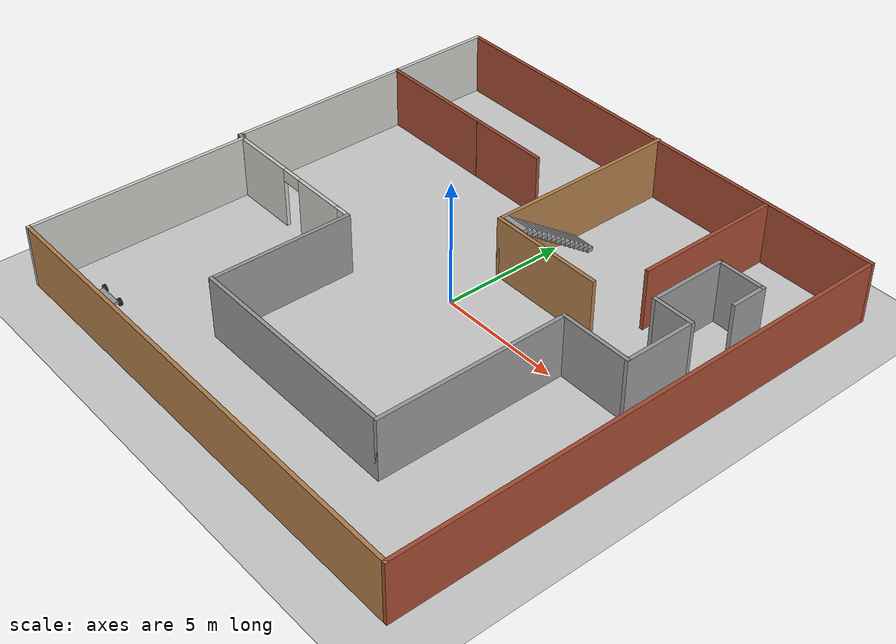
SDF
<sdf version="1.6">
 <world name="default">
  <light name="sun" type="directional">
   <pose>0 0 10 0 -0 0</pose>
   <diffuse>0.8 0.8 0.8 1</diffuse>
   <specular>0.1 0.1 0.1 1</specular>
   <attenuation>
    <range>1000</range>
    <constant>0.9</constant>
    <linear>0.01</linear>
    <quadratic>0.001</quadratic>
   </attenuation>
   <direction>-0.5 0.5 -1</direction>
  </light>
  <model name="ground_plane">
   <static>1</static>
   <link name="link">
    <collision name="collision">
     <geometry><plane><normal>0 0 1</normal><size>100 100</size></plane></geometry>
     <surface><friction><ode><mu>100</mu><mu2>50</mu2></ode></friction></surface>
    </collision>
    <visual name="visual">
     <cast_shadows>0</cast_shadows>
     <geometry><plane><normal>0 0 1</normal><size>100 100</size></plane></geometry>
     <material>
      <script><uri>file://media/materials/scripts/gazebo.material</uri><name>Gazebo/Grey</name></script>
     </material>
    </visual>
   </link>
  </model>
  <gravity>0 0 -9.8</gravity>
  <magnetic_field>6e-06 2.3e-05 -4.2e-05</magnetic_field>
  <atmosphere type="adiabatic"/>
  <physics name="default_physics" default="0" type="ode">
   <max_step_size>0.001</max_step_size>
   <real_time_factor>1</real_time_factor>
   <real_time_update_rate>1000</real_time_update_rate>
  </physics>
  <scene><ambient>0.4 0.4 0.4 1</ambient><background>0.7 0.7 0.7 1</background><shadows>1</shadows></scene>
  <spherical_coordinates>
   <surface_model>EARTH_WGS84</surface_model>
   <latitude_deg>0</latitude_deg>
   <longitude_deg>0</longitude_deg>
   <elevation>0</elevation>
   <heading_deg>0</heading_deg>
  </spherical_coordinates>
  <model name="myroom">
   <pose>-0.292081 -0.175469 0 0 -0 0</pose>
   <link name="Stairs_1">
    <visual name="Stairs_1_Visual_0">
     <pose>0.763284 5.95555 0.083333 0 -0 0</pose>
     <geometry><box><size>1 0.233333 0.166667</size></box></geometry>
     <material>
      <script><uri>file://media/materials/scripts/gazebo.material</uri><name>Gazebo/Grey</name></script>
      <ambient>1 1 1 1</ambient>
     </material>
    </visual>
    <collision name="Stairs_1_Collision_0">
     <geometry><box><size>1 0.233333 0.166667</size></box></geometry>
     <pose>0.763284 5.95555 0.083333 0 -0 0</pose>
    </collision>
    <visual name="Stairs_1_Visual_1">
     <pose>0.763284 5.72222 0.25 0 -0 0</pose>
     <geometry><box><size>1 0.233333 0.166667</size></box></geometry>
     <material>
      <script><uri>file://media/materials/scripts/gazebo.material</uri><name>Gazebo/Grey</name></script>
      <ambient>1 1 1 1</ambient>
     </material>
    </visual>
    <collision name="Stairs_1_Collision_1">
     <geometry><box><size>1 0.233333 0.166667</size></box></geometry>
     <pose>0.763284 5.72222 0.25 0 -0 0</pose>
    </collision>
    <visual name="Stairs_1_Visual_2">
     <pose>0.763284 5.48889 0.416667 0 -0 0</pose>
     <geometry><box><size>1 0.233333 0.166667</size></box></geometry>
     <material>
      <script><uri>file://media/materials/scripts/gazebo.material</uri><name>Gazebo/Grey</name></script>
      <ambient>1 1 1 1</ambient>
     </material>
    </visual>
    <collision name="Stairs_1_Collision_2">
     <geometry><box><size>1 0.233333 0.166667</size></box></geometry>
     <pose>0.763284 5.48889 0.416667 0 -0 0</pose>
    </collision>
    <visual name="Stairs_1_Visual_3">
     <pose>0.763284 5.25555 0.583333 0 -0 0</pose>
     <geometry><box><size>1 0.233333 0.166667</size></box></geometry>
     <material>
      <script><uri>file://media/materials/scripts/gazebo.material</uri><name>Gazebo/Grey</name></script>
      <ambient>1 1 1 1</ambient>
     </material>
    </visual>
    <collision name="Stairs_1_Collision_3">
     <geometry><box><size>1 0.233333 0.166667</size></box></geometry>
     <pose>0.763284 5.25555 0.583333 0 -0 0</pose>
    </collision>
    <visual name="Stairs_1_Visual_4">
     <pose>0.763284 5.02222 0.75 0 -0 0</pose>
     <geometry><box><size>1 0.233333 0.166667</size></box></geometry>
     <material>
      <script><uri>file://media/materials/scripts/gazebo.material</uri><name>Gazebo/Grey</name></script>
      <ambient>1 1 1 1</ambient>
     </material>
    </visual>
    <collision name="Stairs_1_Collision_4">
     <geometry><box><size>1 0.233333 0.166667</size></box></geometry>
     <pose>0.763284 5.02222 0.75 0 -0 0</pose>
    </collision>
    <visual name="Stairs_1_Visual_5">
     <pose>0.763284 4.78889 0.916667 0 -0 0</pose>
     <geometry><box><size>1 0.233333 0.166667</size></box></geometry>
     <material>
      <script><uri>file://media/materials/scripts/gazebo.material</uri><name>Gazebo/Grey</name></script>
      <ambient>1 1 1 1</ambient>
     </material>
    </visual>
    <collision name="Stairs_1_Collision_5">
     <geometry><box><size>1 0.233333 0.166667</size></box></geometry>
     <pose>0.763284 4.78889 0.916667 0 -0 0</pose>
    </collision>
    <visual name="Stairs_1_Visual_6">
     <pose>0.763284 4.55555 1.08333 0 -0 0</pose>
     <geometry><box><size>1 0.233333 0.166667</size></box></geometry>
     <material>
      <script><uri>file://media/materials/scripts/gazebo.material</uri><name>Gazebo/Grey</name></script>
      <ambient>1 1 1 1</ambient>
     </material>
    </visual>
    <collision name="Stairs_1_Collision_6">
     <geometry><box><size>1 0.233333 0.166667</size></box></geometry>
     <pose>0.763284 4.55555 1.08333 0 -0 0</pose>
    </collision>
    <visual name="Stairs_1_Visual_7">
     <pose>0.763284 4.32222 1.25 0 -0 0</pose>
     <geometry><box><size>1 0.233333 0.166667</size></box></geometry>
     <material>
      <script><uri>file://media/materials/scripts/gazebo.material</uri><name>Gazebo/Grey</name></script>
      <ambient>1 1 1 1</ambient>
     </material>
    </visual>
    <collision name="Stairs_1_Collision_7">
     <geometry><box><size>1 0.233333 0.166667</size></box></geometry>
     <pose>0.763284 4.32222 1.25 0 -0 0</pose>
    </collision>
    <visual name="Stairs_1_Visual_8">
     <pose>0.763284 4.08889 1.41667 0 -0 0</pose>
     <geometry><box><size>1 0.233333 0.166667</size></box></geometry>
     <material>
      <script><uri>file://media/materials/scripts/gazebo.material</uri><name>Gazebo/Grey</name></script>
      <ambient>1 1 1 1</ambient>
     </material>
    </visual>
    <collision name="Stairs_1_Collision_8">
     <geometry><box><size>1 0.233333 0.166667</size></box></geometry>
     <pose>0.763284 4.08889 1.41667 0 -0 0</pose>
    </collision>
    <visual name="Stairs_1_Visual_9">
     <pose>0.763284 3.85555 1.58333 0 -0 0</pose>
     <geometry><box><size>1 0.233333 0.166667</size></box></geometry>
     <material>
      <script><uri>file://media/materials/scripts/gazebo.material</uri><name>Gazebo/Grey</name></script>
      <ambient>1 1 1 1</ambient>
     </material>
    </visual>
    <collision name="Stairs_1_Collision_9">
     <geometry><box><size>1 0.233333 0.166667</size></box></geometry>
     <pose>0.763284 3.85555 1.58333 0 -0 0</pose>
    </collision>
    <visual name="Stairs_1_Visual_10">
     <pose>0.763284 3.62222 1.75 0 -0 0</pose>
     <geometry><box><size>1 0.233333 0.166667</size></box></geometry>
     <material>
      <script><uri>file://media/materials/scripts/gazebo.material</uri><name>Gazebo/Grey</name></script>
      <ambient>1 1 1 1</ambient>
     </material>
    </visual>
    <collision name="Stairs_1_Collision_10">
     <geometry><box><size>1 0.233333 0.166667</size></box></geometry>
     <pose>0.763284 3.62222 1.75 0 -0 0</pose>
    </collision>
    <visual name="Stairs_1_Visual_11">
     <pose>0.763284 3.38889 1.91667 0 -0 0</pose>
     <geometry><box><size>1 0.233333 0.166667</size></box></geometry>
     <material>
      <script><uri>file://media/materials/scripts/gazebo.material</uri><name>Gazebo/Grey</name></script>
      <ambient>1 1 1 1</ambient>
     </material>
    </visual>
    <collision name="Stairs_1_Collision_11">
     <geometry><box><size>1 0.233333 0.166667</size></box></geometry>
     <pose>0.763284 3.38889 1.91667 0 -0 0</pose>
    </collision>
    <visual name="Stairs_1_Visual_12">
     <pose>0.763284 3.15555 2.08333 0 -0 0</pose>
     <geometry><box><size>1 0.233333 0.166667</size></box></geometry>
     <material>
      <script><uri>file://media/materials/scripts/gazebo.material</uri><name>Gazebo/Grey</name></script>
      <ambient>1 1 1 1</ambient>
     </material>
    </visual>
    <collision name="Stairs_1_Collision_12">
     <geometry><box><size>1 0.233333 0.166667</size></box></geometry>
     <pose>0.763284 3.15555 2.08333 0 -0 0</pose>
    </collision>
    <visual name="Stairs_1_Visual_13">
     <pose>0.763284 2.92222 2.25 0 -0 0</pose>
     <geometry><box><size>1 0.233333 0.166667</size></box></geometry>
     <material>
      <script><uri>file://media/materials/scripts/gazebo.material</uri><name>Gazebo/Grey</name></script>
      <ambient>1 1 1 1</ambient>
     </material>
    </visual>
    <collision name="Stairs_1_Collision_13">
     <geometry><box><size>1 0.233333 0.166667</size></box></geometry>
     <pose>0.763284 2.92222 2.25 0 -0 0</pose>
    </collision>
    <visual name="Stairs_1_Visual_14">
     <pose>0.763284 2.68889 2.41667 0 -0 0</pose>
     <geometry><box><size>1 0.233333 0.166667</size></box></geometry>
     <material>
      <script><uri>file://media/materials/scripts/gazebo.material</uri><name>Gazebo/Grey</name></script>
      <ambient>1 1 1 1</ambient>
     </material>
    </visual>
    <collision name="Stairs_1_Collision_14">
     <geometry><box><size>1 0.233333 0.166667</size></box></geometry>
     <pose>0.763284 2.68889 2.41667 0 -0 0</pose>
    </collision>
   </link>
   <link name="Wall_0">
    <collision name="Wall_0_Collision">
     <geometry><box><size>0.75 0.15 2.5</size></box></geometry>
     <pose>0 0 1.25 0 -0 0</pose>
    </collision>
    <visual name="Wall_0_Visual">
     <pose>0 0 1.25 0 -0 0</pose>
     <geometry><box><size>0.75 0.15 2.5</size></box></geometry>
     <material>
      <script><uri>file://media/materials/scripts/gazebo.material</uri><name>Gazebo/CeilingTiled</name></script>
      <ambient>1 1 1 1</ambient>
     </material>
    </visual>
    <pose>-3.64337 -1.47351 0 0 -0 3.14159</pose>
   </link>
   <link name="Wall_1">
    <pose>-6.86838 -1.47351 0 0 -0 3.14159</pose>
    <visual name="Wall_1_Visual_0">
     <pose>-1.83718 0 1.25 0 -0 0</pose>
     <geometry><box><size>2.32564 0.15 2.5</size></box></geometry>
     <material>
      <script><uri>file://media/materials/scripts/gazebo.material</uri><name>Gazebo/CeilingTiled</name></script>
      <ambient>1 1 1 1</ambient>
     </material>
    </visual>
    <collision name="Wall_1_Collision_0">
     <geometry><box><size>2.32564 0.15 2.5</size></box></geometry>
     <pose>-1.83718 0 1.25 0 -0 0</pose>
    </collision>
    <visual name="Wall_1_Visual_1">
     <pose>1.61282 0 1.25 0 -0 0</pose>
     <geometry><box><size>2.77436 0.15 2.5</size></box></geometry>
     <material>
      <script><uri>file://media/materials/scripts/gazebo.material</uri><name>Gazebo/CeilingTiled</name></script>
      <ambient>1 1 1 1</ambient>
     </material>
    </visual>
    <collision name="Wall_1_Collision_1">
     <geometry><box><size>2.77436 0.15 2.5</size></box></geometry>
     <pose>1.61282 0 1.25 0 -0 0</pose>
    </collision>
    <visual name="Wall_1_Visual_2">
     <pose>-0.224364 0 2.25 0 -0 0</pose>
     <geometry><box><size>0.9 0.15 0.5</size></box></geometry>
     <material>
      <script><uri>file://media/materials/scripts/gazebo.material</uri><name>Gazebo/CeilingTiled</name></script>
      <ambient>1 1 1 1</ambient>
     </material>
    </visual>
    <collision name="Wall_1_Collision_2">
     <geometry><box><size>0.9 0.15 0.5</size></box></geometry>
     <pose>-0.224364 0 2.25 0 -0 0</pose>
    </collision>
   </link>
   <link name="Wall_10">
    <collision name="Wall_10_Collision">
     <geometry><box><size>8 0.15 2.5</size></box></geometry>
     <pose>0 0 1.25 0 -0 0</pose>
    </collision>
    <visual name="Wall_10_Visual">
     <pose>0 0 1.25 0 -0 0</pose>
     <geometry><box><size>8 0.15 2.5</size></box></geometry>
     <material>
      <script><uri>file://media/materials/scripts/gazebo.material</uri><name>Gazebo/Wood</name></script>
      <ambient>1 1 1 1</ambient>
     </material>
    </visual>
    <pose>0.195005 6.39851 0 0 0 -1.5708</pose>
   </link>
   <link name="Wall_11">
    <collision name="Wall_11_Collision">
     <geometry><box><size>4.75 0.15 2.5</size></box></geometry>
     <pose>0 0 1.25 0 -0 0</pose>
    </collision>
    <visual name="Wall_11_Visual">
     <pose>0 0 1.25 0 -0 0</pose>
     <geometry><box><size>4.75 0.15 2.5</size></box></geometry>
     <material>
      <script><uri>file://media/materials/scripts/gazebo.material</uri><name>Gazebo/Wood</name></script>
      <ambient>1 1 1 1</ambient>
     </material>
    </visual>
    <pose>2.495 2.47351 0 0 -0 0</pose>
   </link>
   <link name="Wall_16">
    <collision name="Wall_16_Collision">
     <geometry><box><size>5 0.15 2.5</size></box></geometry>
     <pose>0 0 1.25 0 -0 0</pose>
    </collision>
    <visual name="Wall_16_Visual">
     <pose>0 0 1.25 0 -0 0</pose>
     <geometry><box><size>5 0.15 2.5</size></box></geometry>
     <material>
      <script><uri>file://media/materials/scripts/gazebo.material</uri><name>Gazebo/Bricks</name></script>
      <ambient>1 1 1 1</ambient>
     </material>
    </visual>
    <pose>-7.61526 6.04331 0 0 -0 0</pose>
   </link>
   <link name="Wall_17">
    <collision name="Wall_17_Collision">
     <geometry><box><size>0.16 0.15 2.5</size></box></geometry>
     <pose>0 0 1.25 0 -0 0</pose>
    </collision>
    <visual name="Wall_17_Visual">
     <pose>0 0 1.25 0 -0 0</pose>
     <geometry><box><size>0.16 0.15 2.5</size></box></geometry>
     <material>
      <script><uri>file://media/materials/scripts/gazebo.material</uri><name>Gazebo/Grey</name></script>
      <ambient>1 1 1 1</ambient>
     </material>
    </visual>
    <pose>-5.18526 6.04331 0 0 -0 0</pose>
   </link>
   <link name="Wall_18">
    <collision name="Wall_18_Collision">
     <geometry><box><size>3.5 0.15 2.5</size></box></geometry>
     <pose>0 0 1.25 0 -0 0</pose>
    </collision>
    <visual name="Wall_18_Visual">
     <pose>0 0 1.25 0 -0 0</pose>
     <geometry><box><size>3.5 0.15 2.5</size></box></geometry>
     <material>
      <script><uri>file://media/materials/scripts/gazebo.material</uri><name>Gazebo/Bricks</name></script>
      <ambient>1 1 1 1</ambient>
     </material>
    </visual>
    <pose>-3.50526 6.04331 0 0 -0 0</pose>
   </link>
   <link name="Wall_2">
    <collision name="Wall_2_Collision">
     <geometry><box><size>9 0.15 2.5</size></box></geometry>
     <pose>0 0 1.25 0 -0 0</pose>
    </collision>
    <visual name="Wall_2_Visual">
     <pose>0 0 1.25 0 -0 0</pose>
     <geometry><box><size>9 0.15 2.5</size></box></geometry>
     <material>
      <script><uri>file://media/materials/scripts/gazebo.material</uri><name>Gazebo/CeilingTiled</name></script>
      <ambient>1 1 1 1</ambient>
     </material>
    </visual>
    <pose>-9.79337 -5.89851 0 0 0 -1.5708</pose>
   </link>
   <link name="Wall_20">
    <collision name="Wall_20_Collision">
     <geometry><box><size>6 0.15 2.5</size></box></geometry>
     <pose>0 0 1.25 0 -0 0</pose>
    </collision>
    <visual name="Wall_20_Visual">
     <pose>0 0 1.25 0 -0 0</pose>
     <geometry><box><size>6 0.15 2.5</size></box></geometry>
     <material>
      <script><uri>file://media/materials/scripts/gazebo.material</uri><name>Gazebo/Bricks</name></script>
      <ambient>1 1 1 1</ambient>
     </material>
    </visual>
    <pose>5.54526 7.21241 0 0 0 -1.5708</pose>
   </link>
   <link name="Wall_22">
    <collision name="Wall_22_Collision">
     <geometry><box><size>5.75 0.15 2.5</size></box></geometry>
     <pose>0 0 1.25 0 -0 0</pose>
    </collision>
    <visual name="Wall_22_Visual">
     <pose>0 0 1.25 0 -0 0</pose>
     <geometry><box><size>5.75 0.15 2.5</size></box></geometry>
     <material>
      <script><uri>file://media/materials/scripts/gazebo.material</uri><name>Gazebo/Grey</name></script>
      <ambient>1 1 1 1</ambient>
     </material>
    </visual>
    <pose>-3.34337 -4.27351 0 0 0 -1.5708</pose>
   </link>
   <link name="Wall_23">
    <collision name="Wall_23_Collision">
     <geometry><box><size>9 0.15 2.5</size></box></geometry>
     <pose>0 0 1.25 0 -0 0</pose>
    </collision>
    <visual name="Wall_23_Visual">
     <pose>0 0 1.25 0 -0 0</pose>
     <geometry><box><size>9 0.15 2.5</size></box></geometry>
     <material>
      <script><uri>file://media/materials/scripts/gazebo.material</uri><name>Gazebo/Grey</name></script>
      <ambient>1 1 1 1</ambient>
     </material>
    </visual>
    <pose>1.08163 -7.07351 0 0 -0 0</pose>
   </link>
   <link name="Wall_24">
    <collision name="Wall_24_Collision">
     <geometry><box><size>7.75 0.15 2.5</size></box></geometry>
     <pose>0 0 1.25 0 -0 0</pose>
    </collision>
    <visual name="Wall_24_Visual">
     <pose>0 0 1.25 0 -0 0</pose>
     <geometry><box><size>7.75 0.15 2.5</size></box></geometry>
     <material>
      <script><uri>file://media/materials/scripts/gazebo.material</uri><name>Gazebo/Grey</name></script>
      <ambient>1 1 1 1</ambient>
     </material>
    </visual>
    <pose>5.50662 -3.27351 0 0 -0 1.5708</pose>
   </link>
   <link name="Wall_25">
    <collision name="Wall_25_Collision">
     <geometry><box><size>3 0.15 2.5</size></box></geometry>
     <pose>0 0 1.25 0 -0 0</pose>
    </collision>
    <visual name="Wall_25_Visual">
     <pose>0 0 1.25 0 -0 0</pose>
     <geometry><box><size>3 0.15 2.5</size></box></geometry>
     <material>
      <script><uri>file://media/materials/scripts/gazebo.material</uri><name>Gazebo/Grey</name></script>
      <ambient>1 1 1 1</ambient>
     </material>
    </visual>
    <pose>6.93163 0.526491 0 0 -0 0</pose>
   </link>
   <link name="Wall_26">
    <collision name="Wall_26_Collision">
     <geometry><box><size>3 0.15 2.5</size></box></geometry>
     <pose>0 0 1.25 0 -0 0</pose>
    </collision>
    <visual name="Wall_26_Visual">
     <pose>0 0 1.25 0 -0 0</pose>
     <geometry><box><size>3 0.15 2.5</size></box></geometry>
     <material>
      <script><uri>file://media/materials/scripts/gazebo.material</uri><name>Gazebo/Grey</name></script>
      <ambient>1 1 1 1</ambient>
     </material>
    </visual>
    <pose>8.35663 1.95149 0 0 -0 1.5708</pose>
   </link>
   <link name="Wall_27">
    <collision name="Wall_27_Collision">
     <geometry><box><size>1.75 0.15 2.5</size></box></geometry>
     <pose>0 0 1.25 0 -0 0</pose>
    </collision>
    <visual name="Wall_27_Visual">
     <pose>0 0 1.25 0 -0 0</pose>
     <geometry><box><size>1.75 0.15 2.5</size></box></geometry>
     <material>
      <script><uri>file://media/materials/scripts/gazebo.material</uri><name>Gazebo/Grey</name></script>
      <ambient>1 1 1 1</ambient>
     </material>
    </visual>
    <pose>7.55663 3.37649 0 0 -0 3.14159</pose>
   </link>
   <link name="Wall_28">
    <collision name="Wall_28_Collision">
     <geometry><box><size>3.25 0.15 2.5</size></box></geometry>
     <pose>0 0 1.25 0 -0 0</pose>
    </collision>
    <visual name="Wall_28_Visual">
     <pose>0 0 1.25 0 -0 0</pose>
     <geometry><box><size>3.25 0.15 2.5</size></box></geometry>
     <material>
      <script><uri>file://media/materials/scripts/gazebo.material</uri><name>Gazebo/Grey</name></script>
      <ambient>1 1 1 1</ambient>
     </material>
    </visual>
    <pose>6.75662 4.92649 0 0 -0 1.5708</pose>
   </link>
   <link name="Wall_29">
    <collision name="Wall_29_Collision">
     <geometry><box><size>2 0.15 2.5</size></box></geometry>
     <pose>0 0 1.25 0 -0 0</pose>
    </collision>
    <visual name="Wall_29_Visual">
     <pose>0 0 1.25 0 -0 0</pose>
     <geometry><box><size>2 0.15 2.5</size></box></geometry>
     <material>
      <script><uri>file://media/materials/scripts/gazebo.material</uri><name>Gazebo/Grey</name></script>
      <ambient>1 1 1 1</ambient>
     </material>
    </visual>
    <pose>7.68163 6.47649 0 0 -0 0</pose>
   </link>
   <link name="Wall_3">
    <collision name="Wall_3_Collision">
     <geometry><box><size>20 0.15 2.5</size></box></geometry>
     <pose>0 0 1.25 0 -0 0</pose>
    </collision>
    <visual name="Wall_3_Visual">
     <pose>0 0 1.25 0 -0 0</pose>
     <geometry><box><size>20 0.15 2.5</size></box></geometry>
     <material>
      <script><uri>file://media/materials/scripts/gazebo.material</uri><name>Gazebo/Wood</name></script>
      <ambient>1 1 1 1</ambient>
     </material>
    </visual>
    <pose>0.131625 -10.3235 0 0 -0 0</pose>
   </link>
   <link name="Wall_30">
    <collision name="Wall_30_Collision">
     <geometry><box><size>0.16 0.15 2.5</size></box></geometry>
     <pose>0 0 1.25 0 -0 0</pose>
    </collision>
    <visual name="Wall_30_Visual">
     <pose>0 0 1.25 0 -0 0</pose>
     <geometry><box><size>0.16 0.15 2.5</size></box></geometry>
     <material>
      <script><uri>file://media/materials/scripts/gazebo.material</uri><name>Gazebo/Grey</name></script>
      <ambient>1 1 1 1</ambient>
     </material>
    </visual>
    <pose>8.61163 6.47649 0 0 -0 0</pose>
   </link>
   <link name="Wall_31">
    <collision name="Wall_31_Collision">
     <geometry><box><size>1.5 0.15 2.5</size></box></geometry>
     <pose>0 0 1.25 0 -0 0</pose>
    </collision>
    <visual name="Wall_31_Visual">
     <pose>0 0 1.25 0 -0 0</pose>
     <geometry><box><size>1.5 0.15 2.5</size></box></geometry>
     <material>
      <script><uri>file://media/materials/scripts/gazebo.material</uri><name>Gazebo/Grey</name></script>
      <ambient>1 1 1 1</ambient>
     </material>
    </visual>
    <pose>8.61663 5.80149 0 0 0 -1.5708</pose>
   </link>
   <link name="Wall_4">
    <collision name="Wall_4_Collision">
     <geometry><box><size>20.75 0.15 2.5</size></box></geometry>
     <pose>0 0 1.25 0 -0 0</pose>
    </collision>
    <visual name="Wall_4_Visual">
     <pose>0 0 1.25 0 -0 0</pose>
     <geometry><box><size>20.75 0.15 2.5</size></box></geometry>
     <material>
      <script><uri>file://media/materials/scripts/gazebo.material</uri><name>Gazebo/Bricks</name></script>
      <ambient>1 1 1 1</ambient>
     </material>
    </visual>
    <pose>10.0566 -0.02351 0 0 -0 1.5708</pose>
   </link>
   <link name="Wall_5">
    <collision name="Wall_5_Collision">
     <geometry><box><size>20.25 0.15 2.5</size></box></geometry>
     <pose>0 0 1.25 0 -0 0</pose>
    </collision>
    <visual name="Wall_5_Visual">
     <pose>0 0 1.25 0 -0 0</pose>
     <geometry><box><size>20.25 0.15 2.5</size></box></geometry>
     <material>
      <script><uri>file://media/materials/scripts/gazebo.material</uri><name>Gazebo/Bricks</name></script>
      <ambient>1 1 1 1</ambient>
     </material>
    </visual>
    <pose>0.006625 10.2765 0 0 -0 3.14159</pose>
   </link>
   <link name="Wall_6">
    <collision name="Wall_6_Collision">
     <geometry><box><size>11.75 0.15 2.5</size></box></geometry>
     <pose>0 0 1.25 0 -0 0</pose>
    </collision>
    <visual name="Wall_6_Visual">
     <pose>0 0 1.25 0 -0 0</pose>
     <geometry><box><size>11.75 0.15 2.5</size></box></geometry>
     <material>
      <script><uri>file://media/materials/scripts/gazebo.material</uri><name>Gazebo/CeilingTiled</name></script>
      <ambient>1 1 1 1</ambient>
     </material>
    </visual>
    <pose>-10.0434 4.47649 0 0 0 -1.5708</pose>
   </link>
   <link name="Wall_7">
    <collision name="Wall_7_Collision">
     <geometry><box><size>0.25 0.15 2.5</size></box></geometry>
     <pose>0 0 1.25 0 -0 0</pose>
    </collision>
    <visual name="Wall_7_Visual">
     <pose>0 0 1.25 0 -0 0</pose>
     <geometry><box><size>0.25 0.15 2.5</size></box></geometry>
     <material>
      <script><uri>file://media/materials/scripts/gazebo.material</uri><name>Gazebo/Grey</name></script>
      <ambient>1 1 1 1</ambient>
     </material>
    </visual>
    <pose>-10.0434 -1.37351 0 0 0 -1.5708</pose>
   </link>
   <link name="Wall_8">
    <collision name="Wall_8_Collision">
     <geometry><box><size>0.404951 0.15 2.5</size></box></geometry>
     <pose>0 0 1.25 0 -0 0</pose>
    </collision>
    <visual name="Wall_8_Visual">
     <pose>0 0 1.25 0 -0 0</pose>
     <geometry><box><size>0.404951 0.15 2.5</size></box></geometry>
     <material>
      <script><uri>file://media/materials/scripts/gazebo.material</uri><name>Gazebo/Grey</name></script>
      <ambient>1 1 1 1</ambient>
     </material>
    </visual>
    <pose>-9.91837 -1.44851 0 0 0 -0.197396</pose>
   </link>
   <static>1</static>
  </model>
  <model name="cart_front_steer">
   <link name="chassis">
    <pose>0 0 0.15 0 -0 0</pose>
    <inertial>
     <pose>0.1 0 0 0 -0 0</pose>
     <mass>10</mass>
     <inertia>
      <ixx>0.216667</ixx>
      <iyy>0.841667</iyy>
      <izz>1.04167</izz>
      <ixy>0</ixy>
      <ixz>0</ixz>
      <iyz>0</iyz>
     </inertia>
    </inertial>
    <collision name="collision"><geometry><box><size>1 0.5 0.1</size></box></geometry></collision>
    <visual name="visual">
     <geometry><box><size>1 0.5 0.1</size></box></geometry>
     <material>
      <script><uri>file://media/materials/scripts/gazebo.material</uri><name>Gazebo/Grey</name></script>
     </material>
    </visual>
   </link>
   <link name="wheel_front_left">
    <pose>0.5 0.298 0.15 -1.5708 -0.087266 0</pose>
    <inertial>
     <mass>0.5</mass>
     <inertia>
      <ixx>0.00307917</ixx>
      <iyy>0.00307917</iyy>
      <izz>0.005625</izz>
      <ixy>0</ixy>
      <ixz>0</ixz>
      <iyz>0</iyz>
     </inertia>
    </inertial>
    <collision name="collision">
     <geometry><cylinder><radius>0.15</radius><length>0.08</length></cylinder></geometry>
    </collision>
    <visual name="visual">
     <geometry><cylinder><radius>0.15</radius><length>0.08</length></cylinder></geometry>
     <material>
      <script><uri>file://media/materials/scripts/gazebo.material</uri><name>Gazebo/Black</name></script>
     </material>
    </visual>
   </link>
   <joint name="wheel_front_left_steer_spin" type="universal">
    <parent>chassis</parent>
    <child>wheel_front_left</child>
    <axis>
     <xyz>0 -1 0</xyz>
     <limit><lower>-0.610865</lower><upper>0.610865</upper></limit>
     <use_parent_model_frame>0</use_parent_model_frame>
     <dynamics><spring_reference>0</spring_reference><spring_stiffness>0</spring_stiffness></dynamics>
    </axis>
    <axis2>
     <xyz>0 0 1</xyz>
     <use_parent_model_frame>0</use_parent_model_frame>
     <dynamics><spring_reference>0</spring_reference><spring_stiffness>0</spring_stiffness></dynamics>
    </axis2>
   </joint>
   <link name="wheel_front_right">
    <pose>0.5 -0.298 0.15 -1.5708 -0.087266 0</pose>
    <inertial>
     <mass>0.5</mass>
     <inertia>
      <ixx>0.00307917</ixx>
      <iyy>0.00307917</iyy>
      <izz>0.005625</izz>
      <ixy>0</ixy>
      <ixz>0</ixz>
      <iyz>0</iyz>
     </inertia>
    </inertial>
    <collision name="collision">
     <geometry><cylinder><radius>0.15</radius><length>0.08</length></cylinder></geometry>
    </collision>
    <visual name="visual">
     <geometry><cylinder><radius>0.15</radius><length>0.08</length></cylinder></geometry>
     <material>
      <script><uri>file://media/materials/scripts/gazebo.material</uri><name>Gazebo/Black</name></script>
     </material>
    </visual>
   </link>
   <joint name="wheel_front_right_steer_spin" type="universal">
    <parent>chassis</parent>
    <child>wheel_front_right</child>
    <axis>
     <xyz>0 -1 0</xyz>
     <limit><lower>-0.610865</lower><upper>0.610865</upper></limit>
     <use_parent_model_frame>0</use_parent_model_frame>
     <dynamics><spring_reference>0</spring_reference><spring_stiffness>0</spring_stiffness></dynamics>
    </axis>
    <axis2>
     <xyz>0 0 1</xyz>
     <use_parent_model_frame>0</use_parent_model_frame>
     <dynamics><spring_reference>0</spring_reference><spring_stiffness>0</spring_stiffness></dynamics>
    </axis2>
   </joint>
   <link name="wheel_rear_left">
    <pose>-0.5 0.298 0.15 -1.5708 0 0</pose>
    <inertial>
     <mass>0.5</mass>
     <inertia>
      <ixx>0.00307917</ixx>
      <iyy>0.00307917</iyy>
      <izz>0.005625</izz>
      <ixy>0</ixy>
      <ixz>0</ixz>
      <iyz>0</iyz>
     </inertia>
    </inertial>
    <collision name="collision">
     <geometry><cylinder><radius>0.15</radius><length>0.08</length></cylinder></geometry>
    </collision>
    <visual name="visual">
     <geometry><cylinder><radius>0.15</radius><length>0.08</length></cylinder></geometry>
     <material>
      <script><uri>file://media/materials/scripts/gazebo.material</uri><name>Gazebo/Black</name></script>
     </material>
    </visual>
   </link>
   <joint name="wheel_rear_left_spin" type="revolute">
    <parent>chassis</parent>
    <child>wheel_rear_left</child>
    <axis>
     <xyz>0 0 1</xyz>
     <use_parent_model_frame>0</use_parent_model_frame>
     <limit><lower>-1e+16</lower><upper>1e+16</upper></limit>
     <dynamics><spring_reference>0</spring_reference><spring_stiffness>0</spring_stiffness></dynamics>
    </axis>
   </joint>
   <link name="wheel_rear_right">
    <pose>-0.5 -0.298 0.15 -1.5708 0 0</pose>
    <inertial>
     <mass>0.5</mass>
     <inertia>
      <ixx>0.00307917</ixx>
      <iyy>0.00307917</iyy>
      <izz>0.005625</izz>
      <ixy>0</ixy>
      <ixz>0</ixz>
      <iyz>0</iyz>
     </inertia>
    </inertial>
    <collision name="collision">
     <geometry><cylinder><radius>0.15</radius><length>0.08</length></cylinder></geometry>
    </collision>
    <visual name="visual">
     <geometry><cylinder><radius>0.15</radius><length>0.08</length></cylinder></geometry>
     <material>
      <script><uri>file://media/materials/scripts/gazebo.material</uri><name>Gazebo/Black</name></script>
     </material>
    </visual>
   </link>
   <joint name="wheel_rear_right_spin" type="revolute">
    <parent>chassis</parent>
    <child>wheel_rear_right</child>
    <axis>
     <xyz>0 0 1</xyz>
     <use_parent_model_frame>0</use_parent_model_frame>
     <limit><lower>-1e+16</lower><upper>1e+16</upper></limit>
     <dynamics><spring_reference>0</spring_reference><spring_stiffness>0</spring_stiffness></dynamics>
    </axis>
   </joint>
   <pose>-7.72304 -9.22521 2e-06 -1e-06 -1e-06 0.003235</pose>
  </model>
 </world>
</sdf>
